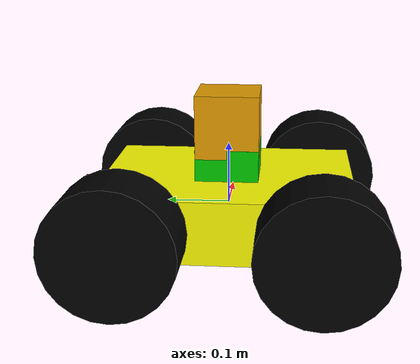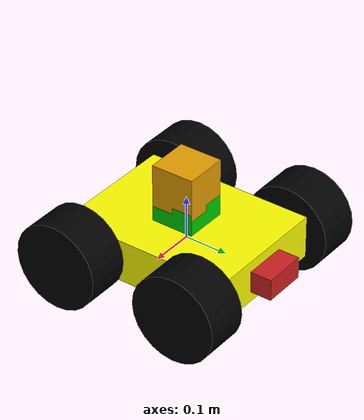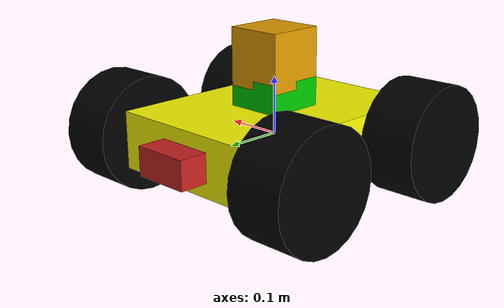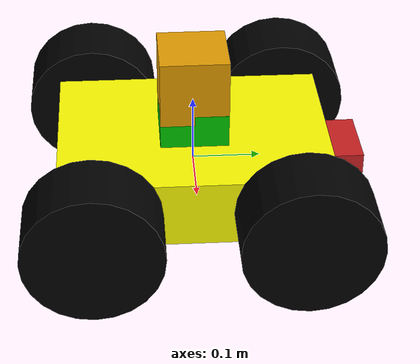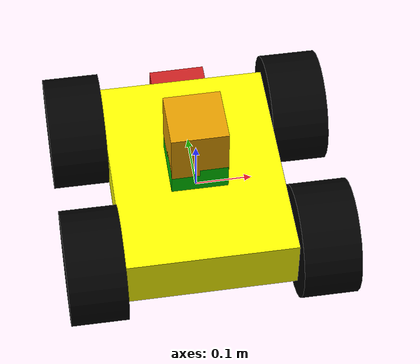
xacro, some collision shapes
<?xml version="1.0"?>

<robot xmlns:xacro="http://www.ros.org/wiki/xacro" name="robo">
    <xacro:include filename="$(find robo_description)/URDF/material.xacro" />
    <xacro:include filename="$(find robo_description)/URDF/robot.gazebo" />

    <!-- Gazebo refrence materials-->

  <gazebo reference="base">
    <material>Gazebo/Yellow</material>
  </gazebo>

  <gazebo reference="right_front_wheel">
   <material>Gazebo/Black</material>
  </gazebo>

  <gazebo reference="right_back_wheel">
   <material>Gazebo/Black</material>
  </gazebo>

  <gazebo reference="left_front_wheel">
   <material>Gazebo/Black</material>
  </gazebo>

  <gazebo reference="left_back_wheel">
   <material>Gazebo/Black</material>
  </gazebo>

  <gazebo reference="camera_link">
    <material>Gazebo/Red</material>
  </gazebo>

    <!-- base -->
<link name="dummy"></link>

<link name="base">
    <inertial>
            <mass value="5.0"/>
            <origin xyz="0.0 0 0.1" rpy=" 0 0 0"/>
            <inertia
          ixx="0.1" ixy="0" ixz="0"
          iyy="0.1" iyz="0"
          izz="0.1"
            />
    </inertial>
    <visual name="base_visual">
        <origin xyz="0.0 0.0 0.0" rpy="0.0 0.0 0.0"/>
        <geometry>
            <box size="0.3 0.4 0.1"/>
        </geometry>
        <material name="yellow"> </material>
    </visual>
    <collision>
        <origin xyz="0.0 0.0 0.0" rpy="0.0 0.0 0.0"/>
        <geometry>
            <box size="0.3 0.4 0.1"/>
        </geometry>
    </collision>
</link>
<joint name="dummy_joint" type="fixed">
     <parent link="dummy"/>
     <child link="base"/>
   </joint>

<link name="holder">
  <inertial>
    <origin xyz="0.0 0.0 0.0" rpy="0.0 0.0 0.0"/>
    <mass value="0.5"/>
    <inertia ixx="0.0" ixy="0.0" ixz="0.0" iyy="0.0" iyz="0.0" izz="0.0"/>
  </inertial>
  <visual name="holder_visual">
    <origin xyz="0.0 0.0 0.0" rpy="0.0 0.0 0.0"/>
    <geometry>
      <box size="0.1 0.1 0.05"/>
    </geometry>
    <material name="green">
    </material>
  </visual>
  <collision>
    <origin xyz="0.0 0.0 0.0" rpy="0.0 0.0 0.0"/>
    <geometry>
      <box size="0.1 0.1 0.05"/>
    </geometry>
  </collision>
</link>

<joint name="holder_joint" type="fixed">
  <origin xyz="0.0 0.0 0.075" rpy="0.0 0.0 0.0"/>
  <parent link="base"/>
  <child link="holder"/>
  <axis xyz="0.0 0.0 0.0"/>
  <limit lower="0.0" upper="0.0" effort="0.0" velocity="0.0"/>
</joint>

<!-- right_front_wheel-->

<link name="right_front_wheel">
    <inertial>
            <mass value="0.2"/>
            <origin rpy="0 1.5707 1.5707" xyz="0 0 0"/>
            <inertia ixx="0.00052666666" ixy="0" ixz="0" iyy="0.00052666666" iyz="0" izz="0.001"/>
    </inertial>
    <visual name="r_f_wheel_visual">
        <origin xyz="0.0 0.0 0.0" rpy="0.0 0.0 0.0"/>
        <geometry>

            <cylinder radius="0.1" length="0.1"/>

        </geometry>
        <material name="black"></material>
    </visual>
    <collision>
        <origin xyz="0.0 0.0 0.0" rpy="0.0 0.0 0.0"/>
        <geometry>
            <cylinder radius="0.1" length="0.1"/>
        </geometry>
    </collision>
</link>
<joint name="r_f_wheel" type="continuous">
    <origin xyz="0.2 0.15 0.0" rpy="0.0 1.577 0.0"/>
    <parent link="base"/>
    <child link="right_front_wheel"/>
    <axis xyz="0.0 0.0 -1"/>
    <limit lower="0.0" upper="0.0" effort="0.0" velocity="0.0"/>
</joint>

<!-- right_back_wheel-->
<link name="right_back_wheel">
    <inertial>
            <mass value="0.2"/>
            <origin rpy="0 1.5707 1.5707" xyz="0 0 0"/>
            <inertia ixx="0.00052666666" ixy="0" ixz="0" iyy="0.00052666666" iyz="0" izz="0.001"/>
    </inertial>
    <visual name="r_b_wheel_visual">
        <origin xyz="0.0 0.0 0.0" rpy="0.0 0.0 0.0"/>
        <geometry>

            <cylinder radius="0.1" length="0.1"/>

        </geometry>
        <material name="black"></material>
    </visual>
    <collision>
        <origin xyz="0.0 0.0 0.0" rpy="0.0 0.0 0.0"/>
        <geometry>
            <cylinder radius="0.1" length="0.1"/>
        </geometry>
    </collision>
</link>
<joint name="r_b_wheel" type="continuous">
    <origin xyz="0.2 -0.15 0.0" rpy="0.0 1.577 0.0"/>
    <parent link="base"/>
    <child link="right_back_wheel"/>
    <axis xyz="0.0 0.0 -1"/>
    <limit lower="0.0" upper="0.0" effort="0.0" velocity="0.0"/>
</joint>

<!--left_front_wheel -->
<link name="left_front_wheel">
    <inertial>
            <mass value="0.2"/>
            <origin rpy="0 1.5707 1.5707" xyz="0 0 0"/>
            <inertia ixx="0.00052666666" ixy="0" ixz="0" iyy="0.00052666666" iyz="0" izz="0.001"/>
    </inertial>
    <visual name="l_f_wheel_visual">
        <origin xyz="0.0 0.0 0.0" rpy="0.0 0.0 0.0"/>
        <geometry>

            <cylinder radius="0.1" length="0.1"/>

        </geometry>
        <material name="black"></material>
    </visual>
    <collision>
        <origin xyz="0.0 0.0 0.0" rpy="0.0 0.0 0.0"/>
        <geometry>
            <cylinder radius="0.1" length="0.1"/>
        </geometry>
    </collision>
</link>
<joint name="l_f_wheel" type="continuous">
    <origin xyz="-0.2 0.15 0.0" rpy="0.0 1.577 0.0"/>
    <parent link="base"/>
    <child link="left_front_wheel"/>
    <axis xyz="0.0 0.0 -1"/>
    <limit lower="0.0" upper="0.0" effort="0.0" velocity="0.0"/>
</joint>

<!--left_back_wheel -->
<link name="left_back_wheel">
    <inertial>
            <mass value="0.2"/>
            <origin rpy="0 1.5707 1.5707" xyz="0 0 0"/>
            <inertia ixx="0.00052666666" ixy="0" ixz="0" iyy="0.00052666666" iyz="0" izz="0.001"/>
    </inertial>
    <visual name="l_f_wheel_visual">
        <origin xyz="0.0 0.0 0.0" rpy="0.0 0.0 0.0"/>
        <geometry>

            <cylinder radius="0.1" length="0.1"/>

        </geometry>
        <material name="black"></material>
    </visual>
    <collision>
        <origin xyz="0.0 0.0 0.0" rpy="0.0 0.0 0.0"/>
        <geometry>
            <cylinder radius="0.1" length="0.1"/>
        </geometry>
    </collision>
</link>
<joint name="l_b_wheel" type="continuous">
    <origin xyz="-0.2 -0.15 0.0" rpy="0.0 1.577 0.0"/>
    <parent link="base"/>
    <child link="left_back_wheel"/>
    <axis xyz="0.0 0.0 -1"/>
    <limit lower="0.0" upper="0.0" effort="0.0" velocity="0.0"/>
</joint>
<!-- camera-->
  <joint name="camera_joint" type="fixed">
    <axis xyz="0 1 0" />
    <origin xyz="0 0.225 0" rpy="0 0 1.577"/>
    <parent link="base"/>
    <child link="camera_link"/>
  </joint>

  <link name="camera_link">
    <collision>
      <origin xyz="0 0 0" rpy="0 0 0"/>
      <geometry>
    <box size="0.05 0.05 0.1"/>
      </geometry>
    </collision>

    <visual>
      <origin xyz="0 0 0" rpy="0 0 0"/>
      <geometry>
    <box size="0.05 0.1 0.05 "/>
      </geometry>
      <material name="red"/>
    </visual>

    <inertial>
      <mass value="1e-5" />
      <origin xyz="0 0 0" rpy="0 0 0"/>
      <inertia ixx="1e-6" ixy="0" ixz="0" iyy="1e-6" iyz="0" izz="1e-6" />
    </inertial>
  </link>

  <!-- Hokuyo Laser -->
  <link name="hokuyo_link">
    <collision>
      <origin xyz="0 0 0" rpy="0 0 0"/>
      <geometry>
    <box size="0.1 0.1 0.1"/>
      </geometry>
    </collision>

    <visual>
      <origin xyz="0 0 0" rpy="0 0 0"/>
      <geometry>
        <mesh filename="package://robo_description/meshes/hokuyo.dae"/>
      </geometry>
    </visual>

    <inertial>
      <mass value="1e-5" />
      <origin xyz="0 0 0" rpy="0 0 0"/>
      <inertia ixx="1e-6" ixy="0" ixz="0" iyy="1e-6" iyz="0" izz="1e-6" />
    </inertial>
  </link>

  <joint name="hokuyo_joint" type="fixed">
    <axis xyz="0 1 0" />
    <origin xyz="0 0 0.1355" rpy="0 0 1.577"/>
    <parent link="base"/>
    <child link="hokuyo_link"/>
  </joint>

</robot>

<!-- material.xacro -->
<robot xmlns:xacro="http://www.ros.org/wiki/xacro">

      <material name="black">
        <color rgba="0.0 0.0 0.0 1.0"/>
      </material>
      <material name="blue">
        <color rgba="0.203125 0.23828125 0.28515625 1.0"/>
      </material>
      <material name="green">
        <color rgba="0.0 0.8 0.0 1.0"/>
      </material>
      <material name="grey">
        <color rgba="0.2 0.2 0.2 1.0"/>
      </material>
      <material name="orange">
        <color rgba="1.0 0.423529411765 0.0392156862745 1.0"/>
      </material>
      <material name="brown">
        <color rgba="0.870588235294 0.811764705882 0.764705882353 1.0"/>
      </material>
      <material name="red">
        <color rgba="0.80078125 0.12890625 0.1328125 1.0"/>
      </material>
      <material name="yellow">
        <color rgba="1.0 1.0 0 1.0"/>
      </material>

</robot>
